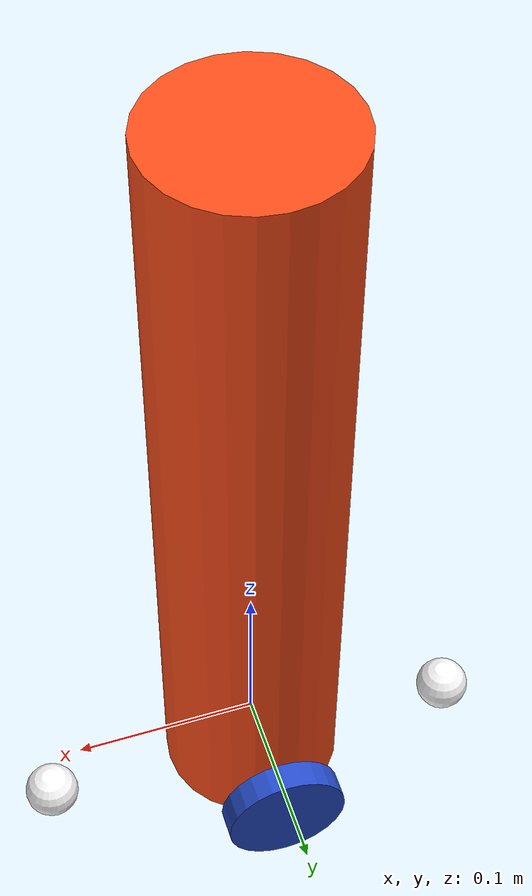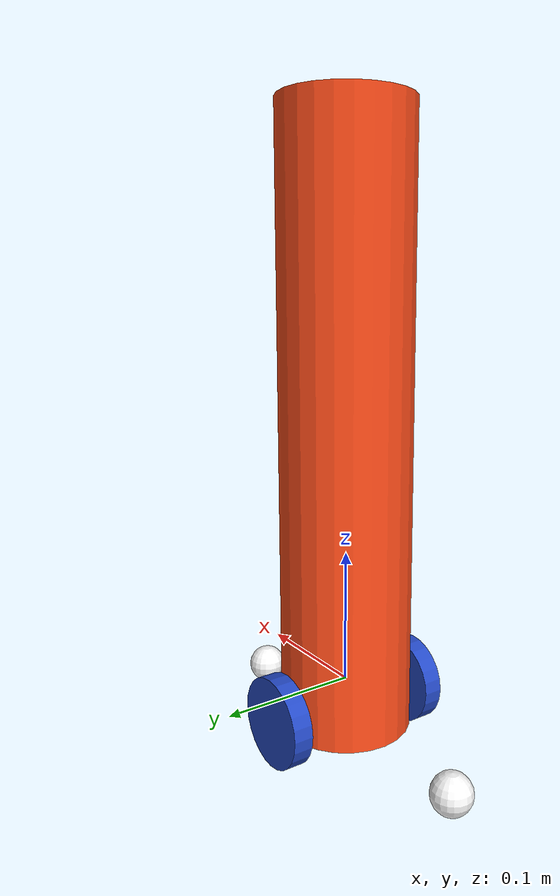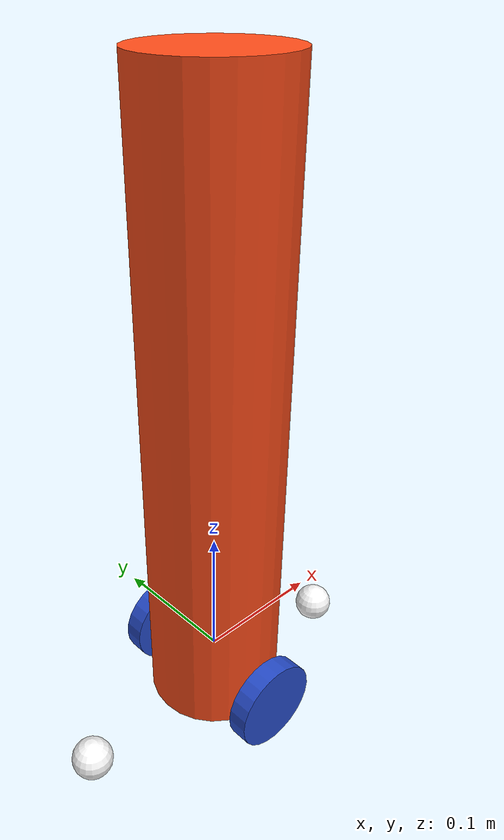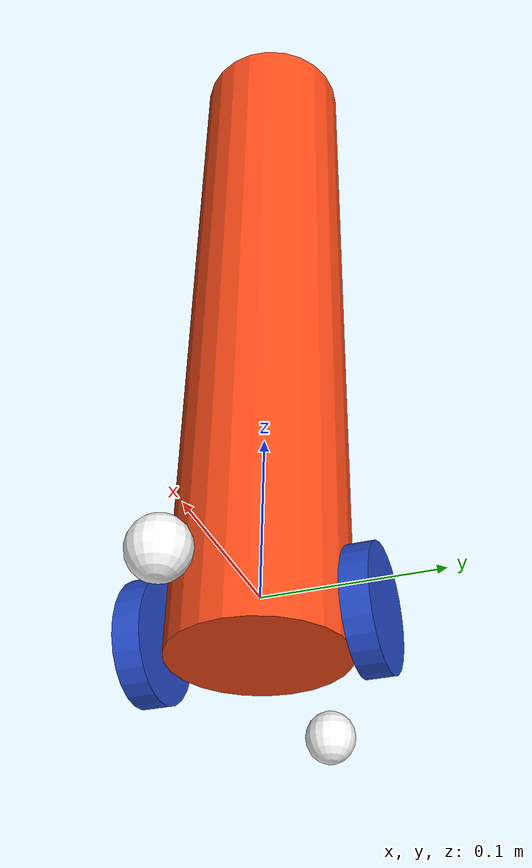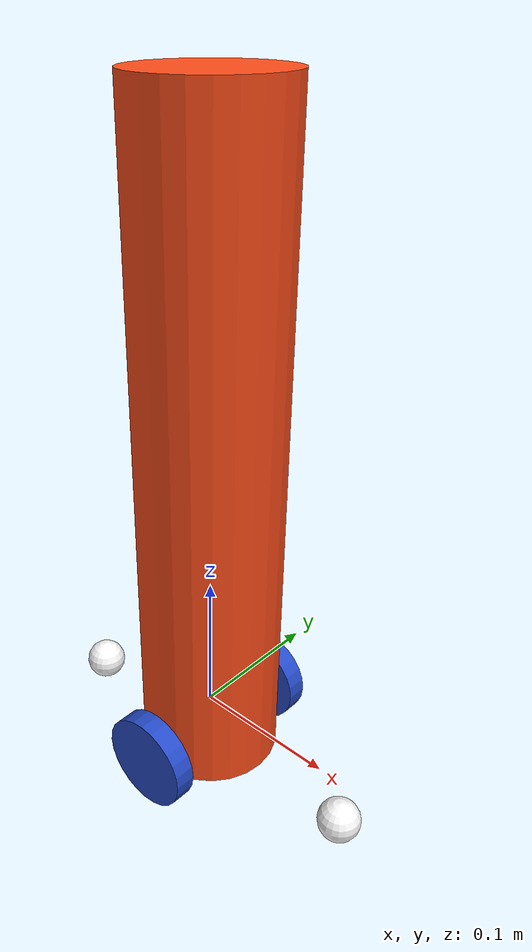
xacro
<?xml version="1.0"?>
<robot xmlns:xacro="http://ros.org/wiki/xacro">

    <xacro:include filename="inertial_macros.xacro"/>

    <xacro:property name="chassis_radius" value="0.049"/>
    <xacro:property name="chassis_height" value="0.453"/>

    <xacro:property name="wheel_radius" value="0.0335"/>
    <xacro:property name="wheel_thickness" value="0.015"/>
    <xacro:property name="wheel_offset_y" value="0.06"/>
    <xacro:property name="wheel_offset_z" value="-0.016"/>
    <xacro:property name="wheel_offset_x" value="0.065"/>
    <xacro:property name="wheel_mass" value="0.05"/>

    <xacro:property name="caster_wheel_mass" value="0.02"/>
    <xacro:property name="caster_wheel_radius" value="0.015"/>
    <xacro:property name="caster_wheel_offset_x" value="0.07"/>
    <xacro:property name="caster_wheel_offset_z" value="${wheel_offset_z - wheel_radius + caster_wheel_radius}"/>

    <material name="white">
        <color rgba="1 1 1 1"/>
    </material>

    <material name="orange">
        <color rgba="1 0.3 0.1 1"/>
    </material>

    <material name="blue">
        <color rgba="0.2 0.2 1 1"/>
    </material>

    <material name="black">
        <color rgba="0 0 0 1"/>
    </material>

    <!--Base Link-->

    <link name="base_link">
    </link>

    <!--Base Footprint Link-->

    <link name="base_footprint">
    </link>

    <joint name="base_joint" type="fixed">
        <parent link="base_link"/>
        <child link="base_footprint"/>
        <origin xyz="0.0 0.0 0.0" rpy="0 0 0"/>
    </joint>

    <!--Chassis Link-->

    <joint name="chassis_joint" type="fixed">
        <parent link="base_link"/>
        <child link="chassis"/>
        <origin xyz="${-chassis_radius} 0 ${-wheel_radius}"/>
    </joint>

    <link name="chassis">
        <visual>
            <origin xyz="0.049 0 ${chassis_height/2}"/>
            <geometry>
                <cylinder radius="${chassis_radius}" length="${chassis_height}"/>
            </geometry>
            <material name="orange"/>
        </visual>

        <collision>
            <origin xyz="0.049 0 ${chassis_height/2}"/>
            <geometry>
                <cylinder radius="${chassis_radius}" length="${chassis_height}"/>
            </geometry>
        </collision>
        <xacro:inertial_cylinder mass="1.0" length="${chassis_height}" radius="${chassis_radius}">
            <origin xyz="0.049 0 ${chassis_height/2}" rpy="0 0 0"/>
        </xacro:inertial_cylinder>
    </link>

    <gazebo reference="chassis">
        <material>Gazebo/Orange</material>
    </gazebo>

    <!--Left wheel link-->
    <joint name="left_wheel_joint" type="continuous">
        <parent link="base_link"/>
        <child link="left_wheel"/>
        <origin xyz="0 ${wheel_offset_y} ${wheel_offset_z}" rpy="-${pi/2} 0 0"/>
        <axis xyz="0 0 1"/>
    </joint>

    <link name="left_wheel">
        <visual>
            <geometry>
                <cylinder radius="${wheel_radius}" length="${wheel_thickness}"/>
                <material name="blue"/>
            </geometry>
        </visual>
        <surface>
            <friction>
            <ode>
                <mu>1.0</mu>
                <mu2>1.0</mu2>
            </ode>
            </friction>
            <contact>
            <ode>
                <min_depth>0.08</min_depth>
            </ode>
            </contact>
        </surface>
        <collision>
            <geometry>
                <sphere radius="${wheel_radius}"/>
            </geometry>
        </collision>

        <xacro:inertial_cylinder mass="${wheel_mass}" length="${wheel_thickness}" radius="${wheel_radius}">
            <origin xyz="0 0 0" rpy="0 0 0"/>
        </xacro:inertial_cylinder>
    </link>

    <gazebo reference="left_wheel">
        <material>Gazebo/Blue</material>
    </gazebo>

    <!--Right wheel link-->
    <joint name="right_wheel_joint" type="continuous">
        <parent link="base_link"/>
        <child link="right_wheel"/>
        <origin xyz="0 -${wheel_offset_y} ${wheel_offset_z}" rpy="${pi/2} 0 0"/>
        <axis xyz="0 0 -1"/>
    </joint>

    <link name="right_wheel">
        <visual>
            <geometry>
                <cylinder radius="${wheel_radius}" length="${wheel_thickness}"/>
                <material name="blue"/>
            </geometry>
        </visual>
        <surface>
            <friction>
                <ode>
                    <mu>1.0</mu>
                    <mu2>1.0</mu2>
                </ode>
            </friction>
            <contact>
                <ode>
                    <min_depth>0.08</min_depth>
                </ode>
            </contact>
        </surface>
        <collision>
            <geometry>
                <sphere radius="${wheel_radius}" />
            </geometry>
        </collision>

        <xacro:inertial_cylinder mass="${wheel_mass}" length="${wheel_thickness}" radius="${wheel_radius}">
            <origin xyz="0 0 0" rpy="0 0 0"/>
        </xacro:inertial_cylinder>
    </link>

    <gazebo reference="right_wheel">
        <material>Gazebo/Blue</material>
    </gazebo>

    <!--Front Caster wheel joint-->
    <joint name="front_caster_wheel_joint" type="fixed">
        <parent link="chassis"/>
        <child link="front_caster_wheel"/>
        <origin xyz="-${caster_wheel_offset_x} 0 0"/>
    </joint>

    <link name="front_caster_wheel">
        <visual>
            <geometry>
                <sphere radius="${caster_wheel_radius}"/>
            </geometry>
            <material name="white"/>
        </visual>

        <collision>
            <geometry>
                <sphere radius="${caster_wheel_radius}"/>
            </geometry>
        </collision>
        <contact>
            <ode>
                <min_depth>0.1</min_depth>
            </ode>
        </contact>
        <xacro:inertial_sphere mass="${caster_wheel_mass}" radius="${caster_wheel_radius}">
            <origin xyz="0 0 0" rpy="0 0 0"/>
        </xacro:inertial_sphere>
    </link>

    <gazebo reference="front_caster_wheel">
        <material>Gazebo/White</material>
        <mu1 value="0.001"/>
        <mu2 value="0.001"/>
    </gazebo>

    <!--Back Caster wheel joint-->
    <joint name="back_caster_wheel_joint" type="fixed">
        <parent link="chassis"/>
        <child link="back_caster_wheel"/>
        <origin xyz="${(2*chassis_radius) + caster_wheel_offset_x} 0 0"/>
    </joint>

    <link name="back_caster_wheel">
        <visual>
            <geometry>
                <sphere radius="${caster_wheel_radius}"/>
            </geometry>
            <material name="white"/>
        </visual>
        <contact>
            <ode>
                <min_depth>0.1</min_depth>
            </ode>
        </contact>
        <collision>
            <geometry>
                <sphere radius="${caster_wheel_radius}"/>
            </geometry>
        </collision>

        <xacro:inertial_sphere mass="${caster_wheel_mass}" radius="${caster_wheel_radius}">
            <origin xyz="0 0 0" rpy="0 0 0"/>
        </xacro:inertial_sphere>
    </link>

    <gazebo reference="back_caster_wheel">
        <material>Gazebo/White</material>
        <mu1 value="0.001"/>
        <mu2 value="0.001"/>
    </gazebo>
</robot>

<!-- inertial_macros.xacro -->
<robot xmlns:xacro="http://www.ros.org/wiki/xacro">

<xacro:macro name="inertial_sphere" params="mass radius *origin">
    <inertial>
        <xacro:insert_block name="origin"/>
        <mass value="${mass}"/>
        <inertia ixx="${(2/5) * mass * (radius*radius)}" ixy="0.0" ixz="0.0"
                iyy="${(2/5) * mass * (radius*radius)}" iyz="0.0"
                izz="${(2/5) * mass * (radius*radius)}"/>
    </inertial>
</xacro:macro>

<xacro:macro name="inertial_cylinder" params="mass length radius *origin">
    <inertial>
        <xacro:insert_block name="origin"/>
        <mass value="${mass}"/>
        <inertia ixx="${(1/12) * mass * (3*radius*radius + length*length)}" ixy="0.0" ixz="0.0"
                iyy="${(1/12) * mass * (3*radius*radius + length*length)}" iyz="0.0"
                izz="${(1/2) * mass * (radius*radius)}"/>
    </inertial>
</xacro:macro>

</robot>
